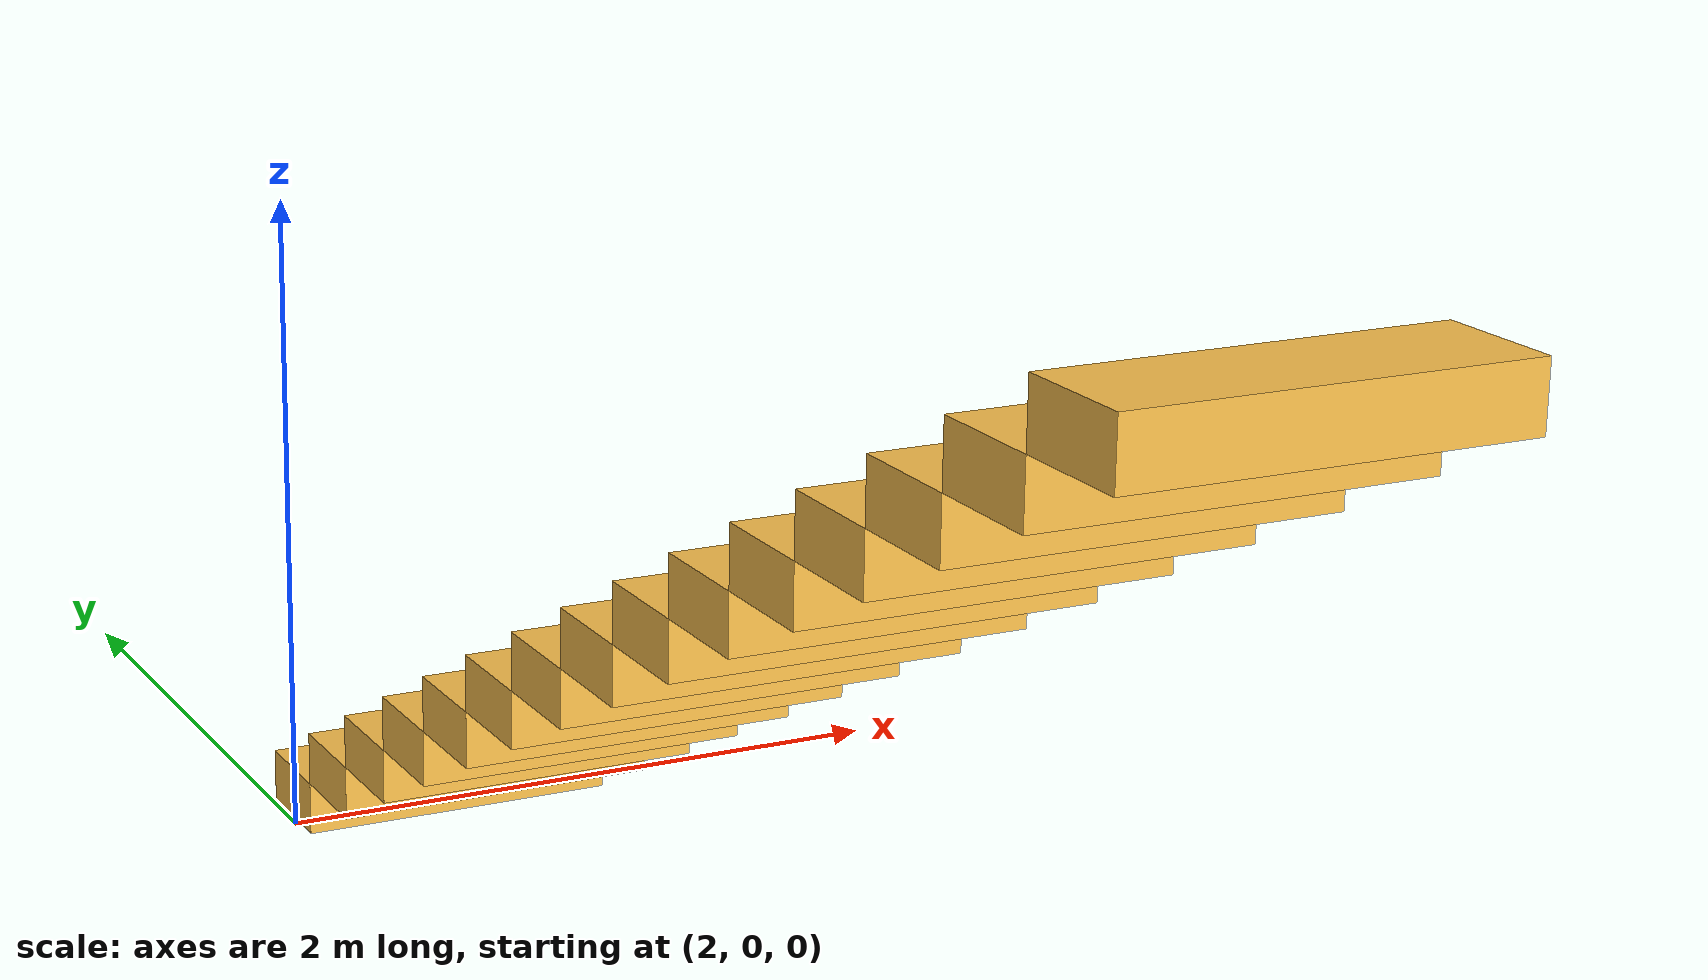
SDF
<?xml version='1.0'?>
<sdf version='1.7'>
  <model name='stair2'>
    <pose>1.50712 -2.17932 0 0 -0 0</pose>
    <link name='Stairs_0'>
      <visual name='Stairs_0_Visual_0'>
        <pose>1.00712 2.23781 0.083333 0 -0 0</pose>
        <geometry>
          <box>
            <size>1 0.319688 0.166667</size>
          </box>
        </geometry>
        <material>
          <script>
            <uri>file://media/materials/scripts/gazebo.material</uri>
            <name>Gazebo/Grey</name>
          </script>
          <ambient>1 0.764706 0.305882 1</ambient>
        </material>
        <meta>
          <layer>0</layer>
        </meta>
      </visual>
      <collision name='Stairs_0_Collision_0'>
        <geometry>
          <box>
            <size>1 0.319688 0.166667</size>
          </box>
        </geometry>
        <pose>1.00712 2.23781 0.083333 0 -0 0</pose>
      </collision>
      <visual name='Stairs_0_Visual_1'>
        <pose>1.00712 1.91813 0.25 0 -0 0</pose>
        <geometry>
          <box>
            <size>1 0.319688 0.166667</size>
          </box>
        </geometry>
        <material>
          <script>
            <uri>file://media/materials/scripts/gazebo.material</uri>
            <name>Gazebo/Grey</name>
          </script>
          <ambient>1 0.764706 0.305882 1</ambient>
        </material>
        <meta>
          <layer>0</layer>
        </meta>
      </visual>
      <collision name='Stairs_0_Collision_1'>
        <geometry>
          <box>
            <size>1 0.319688 0.166667</size>
          </box>
        </geometry>
        <pose>1.00712 1.91813 0.25 0 -0 0</pose>
      </collision>
      <visual name='Stairs_0_Visual_2'>
        <pose>1.00712 1.59844 0.416667 0 -0 0</pose>
        <geometry>
          <box>
            <size>1 0.319688 0.166667</size>
          </box>
        </geometry>
        <material>
          <script>
            <uri>file://media/materials/scripts/gazebo.material</uri>
            <name>Gazebo/Grey</name>
          </script>
          <ambient>1 0.764706 0.305882 1</ambient>
        </material>
        <meta>
          <layer>0</layer>
        </meta>
      </visual>
      <collision name='Stairs_0_Collision_2'>
        <geometry>
          <box>
            <size>1 0.319688 0.166667</size>
          </box>
        </geometry>
        <pose>1.00712 1.59844 0.416667 0 -0 0</pose>
      </collision>
      <visual name='Stairs_0_Visual_3'>
        <pose>1.00712 1.27875 0.583333 0 -0 0</pose>
        <geometry>
          <box>
            <size>1 0.319688 0.166667</size>
          </box>
        </geometry>
        <material>
          <script>
            <uri>file://media/materials/scripts/gazebo.material</uri>
            <name>Gazebo/Grey</name>
          </script>
          <ambient>1 0.764706 0.305882 1</ambient>
        </material>
        <meta>
          <layer>0</layer>
        </meta>
      </visual>
      <collision name='Stairs_0_Collision_3'>
        <geometry>
          <box>
            <size>1 0.319688 0.166667</size>
          </box>
        </geometry>
        <pose>1.00712 1.27875 0.583333 0 -0 0</pose>
      </collision>
      <visual name='Stairs_0_Visual_4'>
        <pose>1.00712 0.959063 0.75 0 -0 0</pose>
        <geometry>
          <box>
            <size>1 0.319688 0.166667</size>
          </box>
        </geometry>
        <material>
          <script>
            <uri>file://media/materials/scripts/gazebo.material</uri>
            <name>Gazebo/Grey</name>
          </script>
          <ambient>1 0.764706 0.305882 1</ambient>
        </material>
        <meta>
          <layer>0</layer>
        </meta>
      </visual>
      <collision name='Stairs_0_Collision_4'>
        <geometry>
          <box>
            <size>1 0.319688 0.166667</size>
          </box>
        </geometry>
        <pose>1.00712 0.959063 0.75 0 -0 0</pose>
      </collision>
      <visual name='Stairs_0_Visual_5'>
        <pose>1.00712 0.639375 0.916667 0 -0 0</pose>
        <geometry>
          <box>
            <size>1 0.319688 0.166667</size>
          </box>
        </geometry>
        <material>
          <script>
            <uri>file://media/materials/scripts/gazebo.material</uri>
            <name>Gazebo/Grey</name>
          </script>
          <ambient>1 0.764706 0.305882 1</ambient>
        </material>
        <meta>
          <layer>0</layer>
        </meta>
      </visual>
      <collision name='Stairs_0_Collision_5'>
        <geometry>
          <box>
            <size>1 0.319688 0.166667</size>
          </box>
        </geometry>
        <pose>1.00712 0.639375 0.916667 0 -0 0</pose>
      </collision>
      <visual name='Stairs_0_Visual_6'>
        <pose>1.00712 0.319688 1.08333 0 -0 0</pose>
        <geometry>
          <box>
            <size>1 0.319688 0.166667</size>
          </box>
        </geometry>
        <material>
          <script>
            <uri>file://media/materials/scripts/gazebo.material</uri>
            <name>Gazebo/Grey</name>
          </script>
          <ambient>1 0.764706 0.305882 1</ambient>
        </material>
        <meta>
          <layer>0</layer>
        </meta>
      </visual>
      <collision name='Stairs_0_Collision_6'>
        <geometry>
          <box>
            <size>1 0.319688 0.166667</size>
          </box>
        </geometry>
        <pose>1.00712 0.319688 1.08333 0 -0 0</pose>
      </collision>
      <visual name='Stairs_0_Visual_7'>
        <pose>1.00712 -0 1.25 0 -0 0</pose>
        <geometry>
          <box>
            <size>1 0.319688 0.166667</size>
          </box>
        </geometry>
        <material>
          <script>
            <uri>file://media/materials/scripts/gazebo.material</uri>
            <name>Gazebo/Grey</name>
          </script>
          <ambient>1 0.764706 0.305882 1</ambient>
        </material>
        <meta>
          <layer>0</layer>
        </meta>
      </visual>
      <collision name='Stairs_0_Collision_7'>
        <geometry>
          <box>
            <size>1 0.319688 0.166667</size>
          </box>
        </geometry>
        <pose>1.00712 -0 1.25 0 -0 0</pose>
      </collision>
      <visual name='Stairs_0_Visual_8'>
        <pose>1.00712 -0.319688 1.41667 0 -0 0</pose>
        <geometry>
          <box>
            <size>1 0.319688 0.166667</size>
          </box>
        </geometry>
        <material>
          <script>
            <uri>file://media/materials/scripts/gazebo.material</uri>
            <name>Gazebo/Grey</name>
          </script>
          <ambient>1 0.764706 0.305882 1</ambient>
        </material>
        <meta>
          <layer>0</layer>
        </meta>
      </visual>
      <collision name='Stairs_0_Collision_8'>
        <geometry>
          <box>
            <size>1 0.319688 0.166667</size>
          </box>
        </geometry>
        <pose>1.00712 -0.319688 1.41667 0 -0 0</pose>
      </collision>
      <visual name='Stairs_0_Visual_9'>
        <pose>1.00712 -0.639375 1.58333 0 -0 0</pose>
        <geometry>
          <box>
            <size>1 0.319688 0.166667</size>
          </box>
        </geometry>
        <material>
          <script>
            <uri>file://media/materials/scripts/gazebo.material</uri>
            <name>Gazebo/Grey</name>
          </script>
          <ambient>1 0.764706 0.305882 1</ambient>
        </material>
        <meta>
          <layer>0</layer>
        </meta>
      </visual>
      <collision name='Stairs_0_Collision_9'>
        <geometry>
          <box>
            <size>1 0.319688 0.166667</size>
          </box>
        </geometry>
        <pose>1.00712 -0.639375 1.58333 0 -0 0</pose>
      </collision>
      <visual name='Stairs_0_Visual_10'>
        <pose>1.00712 -0.959063 1.75 0 -0 0</pose>
        <geometry>
          <box>
            <size>1 0.319688 0.166667</size>
          </box>
        </geometry>
        <material>
          <script>
            <uri>file://media/materials/scripts/gazebo.material</uri>
            <name>Gazebo/Grey</name>
          </script>
          <ambient>1 0.764706 0.305882 1</ambient>
        </material>
        <meta>
          <layer>0</layer>
        </meta>
      </visual>
      <collision name='Stairs_0_Collision_10'>
        <geometry>
          <box>
            <size>1 0.319688 0.166667</size>
          </box>
        </geometry>
        <pose>1.00712 -0.959063 1.75 0 -0 0</pose>
      </collision>
      <visual name='Stairs_0_Visual_11'>
        <pose>1.00712 -1.27875 1.91667 0 -0 0</pose>
        <geometry>
          <box>
            <size>1 0.319688 0.166667</size>
          </box>
        </geometry>
        <material>
          <script>
            <uri>file://media/materials/scripts/gazebo.material</uri>
            <name>Gazebo/Grey</name>
          </script>
          <ambient>1 0.764706 0.305882 1</ambient>
        </material>
        <meta>
          <layer>0</layer>
        </meta>
      </visual>
      <collision name='Stairs_0_Collision_11'>
        <geometry>
          <box>
            <size>1 0.319688 0.166667</size>
          </box>
        </geometry>
        <pose>1.00712 -1.27875 1.91667 0 -0 0</pose>
      </collision>
      <visual name='Stairs_0_Visual_12'>
        <pose>1.00712 -1.59844 2.08333 0 -0 0</pose>
        <geometry>
          <box>
            <size>1 0.319688 0.166667</size>
          </box>
        </geometry>
        <material>
          <script>
            <uri>file://media/materials/scripts/gazebo.material</uri>
            <name>Gazebo/Grey</name>
          </script>
          <ambient>1 0.764706 0.305882 1</ambient>
        </material>
        <meta>
          <layer>0</layer>
        </meta>
      </visual>
      <collision name='Stairs_0_Collision_12'>
        <geometry>
          <box>
            <size>1 0.319688 0.166667</size>
          </box>
        </geometry>
        <pose>1.00712 -1.59844 2.08333 0 -0 0</pose>
      </collision>
      <visual name='Stairs_0_Visual_13'>
        <pose>1.00712 -1.91813 2.25 0 -0 0</pose>
        <geometry>
          <box>
            <size>1 0.319688 0.166667</size>
          </box>
        </geometry>
        <material>
          <script>
            <uri>file://media/materials/scripts/gazebo.material</uri>
            <name>Gazebo/Grey</name>
          </script>
          <ambient>1 0.764706 0.305882 1</ambient>
        </material>
        <meta>
          <layer>0</layer>
        </meta>
      </visual>
      <collision name='Stairs_0_Collision_13'>
        <geometry>
          <box>
            <size>1 0.319688 0.166667</size>
          </box>
        </geometry>
        <pose>1.00712 -1.91813 2.25 0 -0 0</pose>
      </collision>
      <visual name='Stairs_0_Visual_14'>
        <pose>1.00712 -2.23781 2.41667 0 -0 0</pose>
        <geometry>
          <box>
            <size>1 0.319688 0.166667</size>
          </box>
        </geometry>
        <material>
          <script>
            <uri>file://media/materials/scripts/gazebo.material</uri>
            <name>Gazebo/Grey</name>
          </script>
          <ambient>1 0.764706 0.305882 1</ambient>
        </material>
        <meta>
          <layer>0</layer>
        </meta>
      </visual>
      <collision name='Stairs_0_Collision_14'>
        <geometry>
          <box>
            <size>1 0.319688 0.166667</size>
          </box>
        </geometry>
        <pose>1.00712 -2.23781 2.41667 0 -0 0</pose>
      </collision>
    </link>
    <static>1</static>
  </model>
</sdf>
